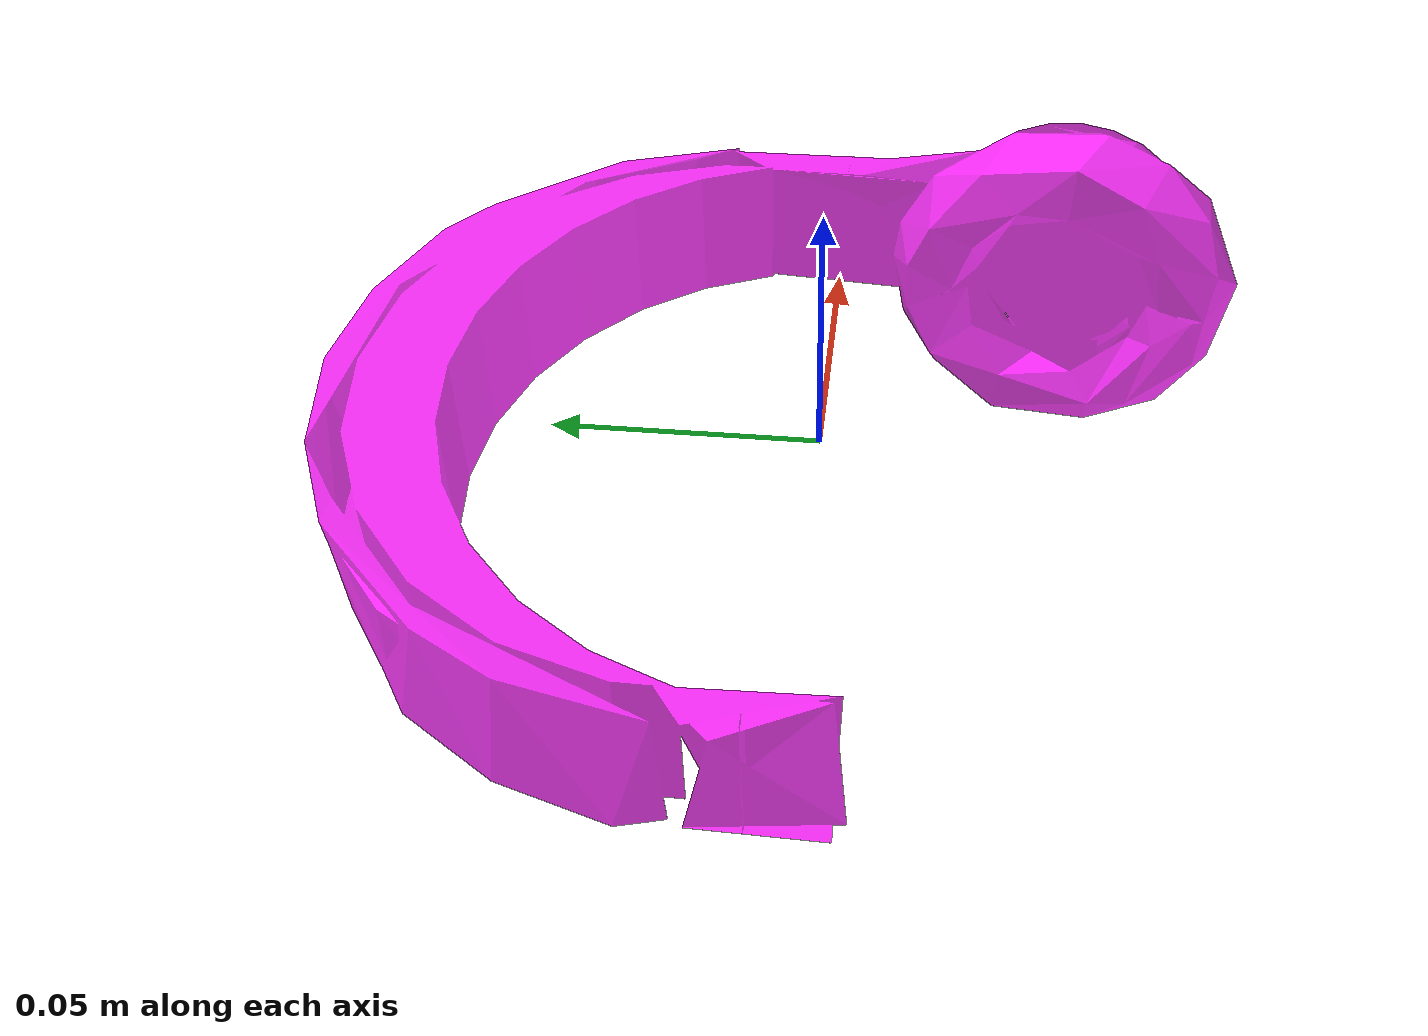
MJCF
<mujoco model="bottom_watertight_tiny">
  <default>
    <default group="2" type="mesh" contype="0" conaffinity="0">
      <geom group="2" type="mesh" contype="0" conaffinity="0"/>
    </default>
    <default group="3" type="mesh">
      <geom group="3" type="mesh"/>
    </default>
  </default>
  <asset>
    <mesh file="bottom_watertight_tiny.obj"/>
    <mesh file="bottom_watertight_tiny_collision_0.obj"/>
    <mesh file="bottom_watertight_tiny_collision_1.obj"/>
    <mesh file="bottom_watertight_tiny_collision_2.obj"/>
    <mesh file="bottom_watertight_tiny_collision_3.obj"/>
    <mesh file="bottom_watertight_tiny_collision_4.obj"/>
    <mesh file="bottom_watertight_tiny_collision_5.obj"/>
    <mesh file="bottom_watertight_tiny_collision_6.obj"/>
    <mesh file="bottom_watertight_tiny_collision_7.obj"/>
    <mesh file="bottom_watertight_tiny_collision_8.obj"/>
    <mesh file="bottom_watertight_tiny_collision_9.obj"/>
    <mesh file="bottom_watertight_tiny_collision_10.obj"/>
    <mesh file="bottom_watertight_tiny_collision_11.obj"/>
    <mesh file="bottom_watertight_tiny_collision_12.obj"/>
    <mesh file="bottom_watertight_tiny_collision_13.obj"/>
    <mesh file="bottom_watertight_tiny_collision_14.obj"/>
    <mesh file="bottom_watertight_tiny_collision_15.obj"/>
    <mesh file="bottom_watertight_tiny_collision_16.obj"/>
    <mesh file="bottom_watertight_tiny_collision_17.obj"/>
    <mesh file="bottom_watertight_tiny_collision_18.obj"/>
    <mesh file="bottom_watertight_tiny_collision_19.obj"/>
    <mesh file="bottom_watertight_tiny_collision_20.obj"/>
    <mesh file="bottom_watertight_tiny_collision_21.obj"/>
    <mesh file="bottom_watertight_tiny_collision_22.obj"/>
    <mesh file="bottom_watertight_tiny_collision_23.obj"/>
    <mesh file="bottom_watertight_tiny_collision_24.obj"/>
    <mesh file="bottom_watertight_tiny_collision_25.obj"/>
    <mesh file="bottom_watertight_tiny_collision_26.obj"/>
    <mesh file="bottom_watertight_tiny_collision_27.obj"/>
    <mesh file="bottom_watertight_tiny_collision_28.obj"/>
    <mesh file="bottom_watertight_tiny_collision_29.obj"/>
    <mesh file="bottom_watertight_tiny_collision_30.obj"/>
    <mesh file="bottom_watertight_tiny_collision_31.obj"/>
    <mesh file="bottom_watertight_tiny_collision_32.obj"/>
    <mesh file="bottom_watertight_tiny_collision_33.obj"/>
    <mesh file="bottom_watertight_tiny_collision_34.obj"/>
    <mesh file="bottom_watertight_tiny_collision_35.obj"/>
    <mesh file="bottom_watertight_tiny_collision_36.obj"/>
    <mesh file="bottom_watertight_tiny_collision_37.obj"/>
    <mesh file="bottom_watertight_tiny_collision_38.obj"/>
    <mesh file="bottom_watertight_tiny_collision_39.obj"/>
    <mesh file="bottom_watertight_tiny_collision_40.obj"/>
    <mesh file="bottom_watertight_tiny_collision_41.obj"/>
    <mesh file="bottom_watertight_tiny_collision_42.obj"/>
    <mesh file="bottom_watertight_tiny_collision_43.obj"/>
    <mesh file="bottom_watertight_tiny_collision_44.obj"/>
    <mesh file="bottom_watertight_tiny_collision_45.obj"/>
    <mesh file="bottom_watertight_tiny_collision_46.obj"/>
    <mesh file="bottom_watertight_tiny_collision_47.obj"/>
    <mesh file="bottom_watertight_tiny_collision_48.obj"/>
    <mesh file="bottom_watertight_tiny_collision_49.obj"/>
    <mesh file="bottom_watertight_tiny_collision_50.obj"/>
    <mesh file="bottom_watertight_tiny_collision_51.obj"/>
    <mesh file="bottom_watertight_tiny_collision_52.obj"/>
    <mesh file="bottom_watertight_tiny_collision_53.obj"/>
    <mesh file="bottom_watertight_tiny_collision_54.obj"/>
    <mesh file="bottom_watertight_tiny_collision_55.obj"/>
    <mesh file="bottom_watertight_tiny_collision_56.obj"/>
    <mesh file="bottom_watertight_tiny_collision_57.obj"/>
    <mesh file="bottom_watertight_tiny_collision_58.obj"/>
    <mesh file="bottom_watertight_tiny_collision_59.obj"/>
    <mesh file="bottom_watertight_tiny_collision_60.obj"/>
    <mesh file="bottom_watertight_tiny_collision_61.obj"/>
    <mesh file="bottom_watertight_tiny_collision_62.obj"/>
    <mesh file="bottom_watertight_tiny_collision_63.obj"/>
    <mesh file="bottom_watertight_tiny_collision_64.obj"/>
    <mesh file="bottom_watertight_tiny_collision_65.obj"/>
    <mesh file="bottom_watertight_tiny_collision_66.obj"/>
  </asset>
  <worldbody>
    <body name="bottom_watertight_tiny">
      <freejoint/>
      <geom mesh="bottom_watertight_tiny" group="2" type="mesh" rgba="1 0 1 0.8" contype="0" conaffinity="0"/>
      <geom mesh="bottom_watertight_tiny_collision_0" rgba="0.5672811831675241 0.42362990569325354 0.05272557620846008 1" group="3" type="mesh"/>
      <geom mesh="bottom_watertight_tiny_collision_1" rgba="0.2165355375085397 0.38416558949918866 0.3767251161737052 1" group="3" type="mesh"/>
      <geom mesh="bottom_watertight_tiny_collision_2" rgba="0.7276414857843723 0.5837936273374434 0.7379411666691136 1" group="3" type="mesh"/>
      <geom mesh="bottom_watertight_tiny_collision_3" rgba="0.20941188987213366 0.6267530977006309 0.5565646059509556 1" group="3" type="mesh"/>
      <geom mesh="bottom_watertight_tiny_collision_4" rgba="0.8359598179309083 0.719453352981032 0.3469647798103792 1" group="3" type="mesh"/>
      <geom mesh="bottom_watertight_tiny_collision_5" rgba="0.21298222446030057 0.8406006296913264 0.4666600141631757 1" group="3" type="mesh"/>
      <geom mesh="bottom_watertight_tiny_collision_6" rgba="0.36532423972479255 0.13146723234259283 0.5480417236168521 1" group="3" type="mesh"/>
      <geom mesh="bottom_watertight_tiny_collision_7" rgba="0.7705246555982789 0.6752729591664145 0.2810131497790461 1" group="3" type="mesh"/>
      <geom mesh="bottom_watertight_tiny_collision_8" rgba="0.09961224871926788 0.19513569022720723 0.925302465836078 1" group="3" type="mesh"/>
      <geom mesh="bottom_watertight_tiny_collision_9" rgba="0.3018654124885102 0.27027360089894437 0.3947002847183745 1" group="3" type="mesh"/>
      <geom mesh="bottom_watertight_tiny_collision_10" rgba="0.23915010545526627 0.5401866183545865 0.43217789716953436 1" group="3" type="mesh"/>
      <geom mesh="bottom_watertight_tiny_collision_11" rgba="0.4593332885512901 0.9016956396006955 0.8979154307264111 1" group="3" type="mesh"/>
      <geom mesh="bottom_watertight_tiny_collision_12" rgba="0.25003753193605405 0.2417063612428395 0.8498512785924213 1" group="3" type="mesh"/>
      <geom mesh="bottom_watertight_tiny_collision_13" rgba="0.46836156813373586 0.9667365866023268 0.30651011863714306 1" group="3" type="mesh"/>
      <geom mesh="bottom_watertight_tiny_collision_14" rgba="0.7648792858127708 0.09842948193464385 0.16707757281228985 1" group="3" type="mesh"/>
      <geom mesh="bottom_watertight_tiny_collision_15" rgba="0.6267710621340404 0.3999899797540195 0.15478734978945452 1" group="3" type="mesh"/>
      <geom mesh="bottom_watertight_tiny_collision_16" rgba="0.5331479679881129 0.7196208466742683 0.15133022777114924 1" group="3" type="mesh"/>
      <geom mesh="bottom_watertight_tiny_collision_17" rgba="0.7186134793816987 0.7923515324171643 0.5077826035845723 1" group="3" type="mesh"/>
      <geom mesh="bottom_watertight_tiny_collision_18" rgba="0.6317370813845848 0.623231406412234 0.04997140523615051 1" group="3" type="mesh"/>
      <geom mesh="bottom_watertight_tiny_collision_19" rgba="0.5611168022017133 0.02675383427932221 0.35201743402825236 1" group="3" type="mesh"/>
      <geom mesh="bottom_watertight_tiny_collision_20" rgba="0.2845647899618815 0.8827306666170723 0.8994920267116749 1" group="3" type="mesh"/>
      <geom mesh="bottom_watertight_tiny_collision_21" rgba="0.1424931795585599 0.01671799917804806 0.4672208212306844 1" group="3" type="mesh"/>
      <geom mesh="bottom_watertight_tiny_collision_22" rgba="0.8277648240336449 0.9869867256367558 0.8828605898474042 1" group="3" type="mesh"/>
      <geom mesh="bottom_watertight_tiny_collision_23" rgba="0.07557016002247663 0.007226078407459591 0.04694611654656855 1" group="3" type="mesh"/>
      <geom mesh="bottom_watertight_tiny_collision_24" rgba="0.30901616937241083 0.42593851215726897 0.3091831080387558 1" group="3" type="mesh"/>
      <geom mesh="bottom_watertight_tiny_collision_25" rgba="0.6850513513557667 0.36794798995099154 0.0046143613531273164 1" group="3" type="mesh"/>
      <geom mesh="bottom_watertight_tiny_collision_26" rgba="0.8548371924244808 0.9748437634267149 0.4360667923673103 1" group="3" type="mesh"/>
      <geom mesh="bottom_watertight_tiny_collision_27" rgba="0.8626399854669233 0.3502008987674333 0.6874322371008339 1" group="3" type="mesh"/>
      <geom mesh="bottom_watertight_tiny_collision_28" rgba="0.8917309675171953 0.37454434833679895 0.34640964303826094 1" group="3" type="mesh"/>
      <geom mesh="bottom_watertight_tiny_collision_29" rgba="0.48346640359998816 0.6395930199994979 0.9907754801277536 1" group="3" type="mesh"/>
      <geom mesh="bottom_watertight_tiny_collision_30" rgba="0.004458854982683058 0.6499045793924889 0.21043279163050255 1" group="3" type="mesh"/>
      <geom mesh="bottom_watertight_tiny_collision_31" rgba="0.33770178548462815 0.7588113209165104 0.1214221459289776 1" group="3" type="mesh"/>
      <geom mesh="bottom_watertight_tiny_collision_32" rgba="0.022264554411860704 0.42676587288268386 0.5928163706600295 1" group="3" type="mesh"/>
      <geom mesh="bottom_watertight_tiny_collision_33" rgba="0.17598377758290729 0.9313396989652325 0.2081637068854757 1" group="3" type="mesh"/>
      <geom mesh="bottom_watertight_tiny_collision_34" rgba="0.10118715569003545 0.3498524379586553 0.8785246961028721 1" group="3" type="mesh"/>
      <geom mesh="bottom_watertight_tiny_collision_35" rgba="0.6475620963820915 0.3043558085297049 0.4271793994567984 1" group="3" type="mesh"/>
      <geom mesh="bottom_watertight_tiny_collision_36" rgba="0.2929743333871331 0.04525894124251306 0.438715969379022 1" group="3" type="mesh"/>
      <geom mesh="bottom_watertight_tiny_collision_37" rgba="0.354853122752928 0.5222502615444385 0.24999120641734762 1" group="3" type="mesh"/>
      <geom mesh="bottom_watertight_tiny_collision_38" rgba="0.538054046081765 0.0577437601839923 0.04608584129497384 1" group="3" type="mesh"/>
      <geom mesh="bottom_watertight_tiny_collision_39" rgba="0.5265999083122256 0.2268281338076512 0.5592935959224434 1" group="3" type="mesh"/>
      <geom mesh="bottom_watertight_tiny_collision_40" rgba="0.7644828799771376 0.11264791131872864 0.9352343178341744 1" group="3" type="mesh"/>
      <geom mesh="bottom_watertight_tiny_collision_41" rgba="0.9905224138638278 0.7780720720772974 0.25688721823266847 1" group="3" type="mesh"/>
      <geom mesh="bottom_watertight_tiny_collision_42" rgba="0.21336265552130584 0.3905766167716931 0.6917961766201739 1" group="3" type="mesh"/>
      <geom mesh="bottom_watertight_tiny_collision_43" rgba="0.27887089020388633 0.6603289145747373 0.047570101312574775 1" group="3" type="mesh"/>
      <geom mesh="bottom_watertight_tiny_collision_44" rgba="0.7493810111602365 0.25239365658860324 0.8516414767764539 1" group="3" type="mesh"/>
      <geom mesh="bottom_watertight_tiny_collision_45" rgba="0.3416984481815686 0.3473008186671618 0.33400465295237436 1" group="3" type="mesh"/>
      <geom mesh="bottom_watertight_tiny_collision_46" rgba="0.4528702097035807 0.38821574141136306 0.0822965547696961 1" group="3" type="mesh"/>
      <geom mesh="bottom_watertight_tiny_collision_47" rgba="0.3088260083909494 0.9490707500025606 0.9264407111463735 1" group="3" type="mesh"/>
      <geom mesh="bottom_watertight_tiny_collision_48" rgba="0.22262667167696315 0.9529538934315895 0.2269730625006744 1" group="3" type="mesh"/>
      <geom mesh="bottom_watertight_tiny_collision_49" rgba="0.22884983377576096 0.504688254694478 0.5590657482561351 1" group="3" type="mesh"/>
      <geom mesh="bottom_watertight_tiny_collision_50" rgba="0.7620737361557013 0.41342522144412686 0.4304378132821478 1" group="3" type="mesh"/>
      <geom mesh="bottom_watertight_tiny_collision_51" rgba="0.4169250484665884 0.5074534757991059 0.3415865441604323 1" group="3" type="mesh"/>
      <geom mesh="bottom_watertight_tiny_collision_52" rgba="0.2664242149866327 0.15259700016706657 0.6361602705624443 1" group="3" type="mesh"/>
      <geom mesh="bottom_watertight_tiny_collision_53" rgba="0.32669313617350093 0.09265587936401509 0.09375947315290756 1" group="3" type="mesh"/>
      <geom mesh="bottom_watertight_tiny_collision_54" rgba="0.4239904923197353 0.4066019136842124 0.7100439631815667 1" group="3" type="mesh"/>
      <geom mesh="bottom_watertight_tiny_collision_55" rgba="0.10217620316397624 0.2911522622317214 0.17109480241227193 1" group="3" type="mesh"/>
      <geom mesh="bottom_watertight_tiny_collision_56" rgba="0.49993607462407097 0.4057608103007958 0.7347665297730348 1" group="3" type="mesh"/>
      <geom mesh="bottom_watertight_tiny_collision_57" rgba="0.2800041833771104 0.8436013556003931 0.38700445788822724 1" group="3" type="mesh"/>
      <geom mesh="bottom_watertight_tiny_collision_58" rgba="0.5718563393956566 0.031990232533309904 0.2642997775426197 1" group="3" type="mesh"/>
      <geom mesh="bottom_watertight_tiny_collision_59" rgba="0.7800089057112297 0.17775790751930154 0.5526266160419926 1" group="3" type="mesh"/>
      <geom mesh="bottom_watertight_tiny_collision_60" rgba="0.6496739905262088 0.2882930844942846 0.01669933490499187 1" group="3" type="mesh"/>
      <geom mesh="bottom_watertight_tiny_collision_61" rgba="0.7814691795826745 0.6175764069656275 0.029024587785900002 1" group="3" type="mesh"/>
      <geom mesh="bottom_watertight_tiny_collision_62" rgba="0.5156776692965765 0.8162305233887246 0.8893165433100801 1" group="3" type="mesh"/>
      <geom mesh="bottom_watertight_tiny_collision_63" rgba="0.0349214720743487 0.14846805583667755 0.055097896740710306 1" group="3" type="mesh"/>
      <geom mesh="bottom_watertight_tiny_collision_64" rgba="0.5125148858820319 0.49677712762696025 0.9920889479361255 1" group="3" type="mesh"/>
      <geom mesh="bottom_watertight_tiny_collision_65" rgba="0.46338465634788084 0.6382382940509703 0.13474175031898494 1" group="3" type="mesh"/>
      <geom mesh="bottom_watertight_tiny_collision_66" rgba="0.5627892161538725 0.37603730772697297 0.8281948292040406 1" group="3" type="mesh"/>
    </body>
  </worldbody>
</mujoco>
